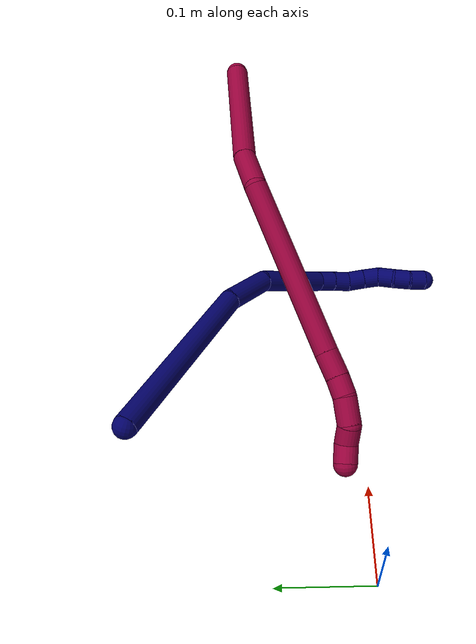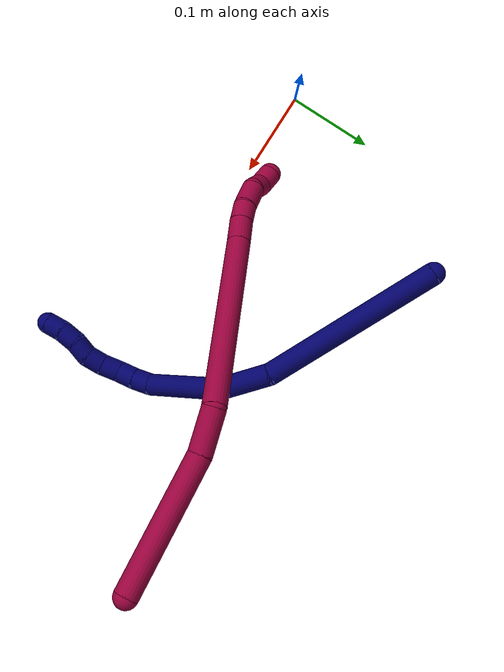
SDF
<sdf version="1.7">
 <world name="default">
  <model name="7">
   <static>0</static>
   <link name="7">
    <collision name="collision-cylinder-e_1_1_4">
     <pose>0.091069 0.011128 0.044133 -0.246994 1.10733 -0.153162</pose>
     <geometry><cylinder><radius>0.0125</radius><length>0.203619</length></cylinder></geometry>
     <surface>
      <friction><ode><mu>1.16</mu><mu2>1.16</mu2><slip1>0</slip1><slip2>0</slip2></ode></friction>
      <contact><ode><kp>1e+06</kp><kd>1</kd><max_vel>0</max_vel><min_depth>0.001</min_depth></ode></contact>
     </surface>
    </collision>
    <visual name="visual-cylinder-e_1_1_4">
     <pose>0.091069 0.011128 0.044133 -0.246994 1.10733 -0.153162</pose>
     <geometry><cylinder><radius>0.0125</radius><length>0.203619</length></cylinder></geometry>
     <material><ambient>0.003922 0 0.403922 1</ambient></material>
    </visual>
    <collision name="collision-cylinder-e_2_4_5">
     <pose>0.209743 0.017933 0.098124 0.41325 1.19899 0.284566</pose>
     <geometry><cylinder><radius>0.0125</radius><length>0.059258</length></cylinder></geometry>
     <surface>
      <friction><ode><mu>1.16</mu><mu2>1.16</mu2><slip1>0</slip1><slip2>0</slip2></ode></friction>
      <contact><ode><kp>1e+06</kp><kd>1</kd><max_vel>0</max_vel><min_depth>0.001</min_depth></ode></contact>
     </surface>
    </collision>
    <visual name="visual-cylinder-e_2_4_5">
     <pose>0.209743 0.017933 0.098124 0.41325 1.19899 0.284566</pose>
     <geometry><cylinder><radius>0.0125</radius><length>0.059258</length></cylinder></geometry>
     <material><ambient>0.003922 0 0.403922 1</ambient></material>
    </visual>
    <collision name="collision-cylinder-e_3_5_6">
     <pose>0.279541 -0.005408 0.109895 1.47058 1.14544 1.05599</pose>
     <geometry><cylinder><radius>0.0125</radius><length>0.092642</length></cylinder></geometry>
     <surface>
      <friction><ode><mu>1.16</mu><mu2>1.16</mu2><slip1>0</slip1><slip2>0</slip2></ode></friction>
      <contact><ode><kp>1e+06</kp><kd>1</kd><max_vel>0</max_vel><min_depth>0.001</min_depth></ode></contact>
     </surface>
    </collision>
    <visual name="visual-cylinder-e_3_5_6">
     <pose>0.279541 -0.005408 0.109895 1.47058 1.14544 1.05599</pose>
     <geometry><cylinder><radius>0.0125</radius><length>0.092642</length></cylinder></geometry>
     <material><ambient>0.003922 0 0.403922 1</ambient></material>
    </visual>
    <collision name="collision-cylinder-e_4_6_7">
     <pose>0.329139 -0.031533 0.113993 1.27238 0.783356 0.592207</pose>
     <geometry><cylinder><radius>0.0125</radius><length>0.020987</length></cylinder></geometry>
     <surface>
      <friction><ode><mu>1.16</mu><mu2>1.16</mu2><slip1>0</slip1><slip2>0</slip2></ode></friction>
      <contact><ode><kp>1e+06</kp><kd>1</kd><max_vel>0</max_vel><min_depth>0.001</min_depth></ode></contact>
     </surface>
    </collision>
    <visual name="visual-cylinder-e_4_6_7">
     <pose>0.329139 -0.031533 0.113993 1.27238 0.783356 0.592207</pose>
     <geometry><cylinder><radius>0.0125</radius><length>0.020987</length></cylinder></geometry>
     <material><ambient>0.003922 0 0.403922 1</ambient></material>
    </visual>
    <collision name="collision-cylinder-e_5_7_8">
     <pose>0.343227 -0.046277 0.118011 1.33539 0.704972 0.564607</pose>
     <geometry><cylinder><radius>0.0125</radius><length>0.020625</length></cylinder></geometry>
     <surface>
      <friction><ode><mu>1.16</mu><mu2>1.16</mu2><slip1>0</slip1><slip2>0</slip2></ode></friction>
      <contact><ode><kp>1e+06</kp><kd>1</kd><max_vel>0</max_vel><min_depth>0.001</min_depth></ode></contact>
     </surface>
    </collision>
    <visual name="visual-cylinder-e_5_7_8">
     <pose>0.343227 -0.046277 0.118011 1.33539 0.704972 0.564607</pose>
     <geometry><cylinder><radius>0.0125</radius><length>0.020625</length></cylinder></geometry>
     <material><ambient>0.003922 0 0.403922 1</ambient></material>
    </visual>
    <collision name="collision-cylinder-e_6_8_9">
     <pose>0.355727 -0.062056 0.124451 1.05571 0.556324 0.329966</pose>
     <geometry><cylinder><radius>0.0125</radius><length>0.022032</length></cylinder></geometry>
     <surface>
      <friction><ode><mu>1.16</mu><mu2>1.16</mu2><slip1>0</slip1><slip2>0</slip2></ode></friction>
      <contact><ode><kp>1e+06</kp><kd>1</kd><max_vel>0</max_vel><min_depth>0.001</min_depth></ode></contact>
     </surface>
    </collision>
    <visual name="visual-cylinder-e_6_8_9">
     <pose>0.355727 -0.062056 0.124451 1.05571 0.556324 0.329966</pose>
     <geometry><cylinder><radius>0.0125</radius><length>0.022032</length></cylinder></geometry>
     <material><ambient>0.003922 0 0.403922 1</ambient></material>
    </visual>
    <collision name="collision-cylinder-e_7_9_10">
     <pose>0.365203 -0.078527 0.13357 1.07457 0.36864 0.221229</pose>
     <geometry><cylinder><radius>0.0125</radius><length>0.02031</length></cylinder></geometry>
     <surface>
      <friction><ode><mu>1.16</mu><mu2>1.16</mu2><slip1>0</slip1><slip2>0</slip2></ode></friction>
      <contact><ode><kp>1e+06</kp><kd>1</kd><max_vel>0</max_vel><min_depth>0.001</min_depth></ode></contact>
     </surface>
    </collision>
    <visual name="visual-cylinder-e_7_9_10">
     <pose>0.365203 -0.078527 0.13357 1.07457 0.36864 0.221229</pose>
     <geometry><cylinder><radius>0.0125</radius><length>0.02031</length></cylinder></geometry>
     <material><ambient>0.003922 0 0.403922 1</ambient></material>
    </visual>
    <collision name="collision-cylinder-e_8_10_11">
     <pose>0.369722 -0.096658 0.140834 1.29684 0.084243 0.063848</pose>
     <geometry><cylinder><radius>0.0125</radius><length>0.020434</length></cylinder></geometry>
     <surface>
      <friction><ode><mu>1.16</mu><mu2>1.16</mu2><slip1>0</slip1><slip2>0</slip2></ode></friction>
      <contact><ode><kp>1e+06</kp><kd>1</kd><max_vel>0</max_vel><min_depth>0.001</min_depth></ode></contact>
     </surface>
    </collision>
    <visual name="visual-cylinder-e_8_10_11">
     <pose>0.369722 -0.096658 0.140834 1.29684 0.084243 0.063848</pose>
     <geometry><cylinder><radius>0.0125</radius><length>0.020434</length></cylinder></geometry>
     <material><ambient>0.003922 0 0.403922 1</ambient></material>
    </visual>
    <collision name="collision-cylinder-e_9_11_12">
     <pose>0.374083 -0.115522 0.145983 1.31249 0.357447 0.276466</pose>
     <geometry><cylinder><radius>0.0125</radius><length>0.020011</length></cylinder></geometry>
     <surface>
      <friction><ode><mu>1.16</mu><mu2>1.16</mu2><slip1>0</slip1><slip2>0</slip2></ode></friction>
      <contact><ode><kp>1e+06</kp><kd>1</kd><max_vel>0</max_vel><min_depth>0.001</min_depth></ode></contact>
     </surface>
    </collision>
    <visual name="visual-cylinder-e_9_11_12">
     <pose>0.374083 -0.115522 0.145983 1.31249 0.357447 0.276466</pose>
     <geometry><cylinder><radius>0.0125</radius><length>0.020011</length></cylinder></geometry>
     <material><ambient>0.003922 0 0.403922 1</ambient></material>
    </visual>
    <collision name="collision-cylinder-e_10_12_2">
     <pose>0.382991 -0.132683 0.150822 1.27758 0.568747 0.427523</pose>
     <geometry><cylinder><radius>0.0125</radius><length>0.020082</length></cylinder></geometry>
     <surface>
      <friction><ode><mu>1.16</mu><mu2>1.16</mu2><slip1>0</slip1><slip2>0</slip2></ode></friction>
      <contact><ode><kp>1e+06</kp><kd>1</kd><max_vel>0</max_vel><min_depth>0.001</min_depth></ode></contact>
     </surface>
    </collision>
    <visual name="visual-cylinder-e_10_12_2">
     <pose>0.382991 -0.132683 0.150822 1.27758 0.568747 0.427523</pose>
     <geometry><cylinder><radius>0.0125</radius><length>0.020082</length></cylinder></geometry>
     <material><ambient>0.003922 0 0.403922 1</ambient></material>
    </visual>
    <collision name="collision-sphere-2">
     <pose>0.388399 -0.140782 0.153268 0 -0 0</pose>
     <geometry><sphere><radius>0.0125</radius></sphere></geometry>
     <surface>
      <friction><ode><mu>1.16</mu><mu2>1.16</mu2><slip1>0</slip1><slip2>0</slip2></ode></friction>
      <contact><ode><kp>1e+06</kp><kd>1</kd><max_vel>0</max_vel><min_depth>0.001</min_depth></ode></contact>
     </surface>
    </collision>
    <visual name="visual-sphere-2">
     <pose>0.388399 -0.140782 0.153268 0 -0 0</pose>
     <geometry><sphere><radius>0.0125</radius></sphere></geometry>
     <material><ambient>0.003922 0 0.403922 1</ambient></material>
    </visual>
    <collision name="collision-sphere-12">
     <pose>0.377584 -0.124584 0.148377 0 -0 0</pose>
     <geometry><sphere><radius>0.0125</radius></sphere></geometry>
     <surface>
      <friction><ode><mu>1.16</mu><mu2>1.16</mu2><slip1>0</slip1><slip2>0</slip2></ode></friction>
      <contact><ode><kp>1e+06</kp><kd>1</kd><max_vel>0</max_vel><min_depth>0.001</min_depth></ode></contact>
     </surface>
    </collision>
    <visual name="visual-sphere-12">
     <pose>0.377584 -0.124584 0.148377 0 -0 0</pose>
     <geometry><sphere><radius>0.0125</radius></sphere></geometry>
     <material><ambient>0.003922 0 0.403922 1</ambient></material>
    </visual>
    <collision name="collision-sphere-11">
     <pose>0.370582 -0.106459 0.143589 0 -0 0</pose>
     <geometry><sphere><radius>0.0125</radius></sphere></geometry>
     <surface>
      <friction><ode><mu>1.16</mu><mu2>1.16</mu2><slip1>0</slip1><slip2>0</slip2></ode></friction>
      <contact><ode><kp>1e+06</kp><kd>1</kd><max_vel>0</max_vel><min_depth>0.001</min_depth></ode></contact>
     </surface>
    </collision>
    <visual name="visual-sphere-11">
     <pose>0.370582 -0.106459 0.143589 0 -0 0</pose>
     <geometry><sphere><radius>0.0125</radius></sphere></geometry>
     <material><ambient>0.003922 0 0.403922 1</ambient></material>
    </visual>
    <collision name="collision-sphere-10">
     <pose>0.368863 -0.086857 0.13808 0 -0 0</pose>
     <geometry><sphere><radius>0.0125</radius></sphere></geometry>
     <surface>
      <friction><ode><mu>1.16</mu><mu2>1.16</mu2><slip1>0</slip1><slip2>0</slip2></ode></friction>
      <contact><ode><kp>1e+06</kp><kd>1</kd><max_vel>0</max_vel><min_depth>0.001</min_depth></ode></contact>
     </surface>
    </collision>
    <visual name="visual-sphere-10">
     <pose>0.368863 -0.086857 0.13808 0 -0 0</pose>
     <geometry><sphere><radius>0.0125</radius></sphere></geometry>
     <material><ambient>0.003922 0 0.403922 1</ambient></material>
    </visual>
    <collision name="collision-sphere-9">
     <pose>0.361544 -0.070197 0.12906 0 -0 0</pose>
     <geometry><sphere><radius>0.0125</radius></sphere></geometry>
     <surface>
      <friction><ode><mu>1.16</mu><mu2>1.16</mu2><slip1>0</slip1><slip2>0</slip2></ode></friction>
      <contact><ode><kp>1e+06</kp><kd>1</kd><max_vel>0</max_vel><min_depth>0.001</min_depth></ode></contact>
     </surface>
    </collision>
    <visual name="visual-sphere-9">
     <pose>0.361544 -0.070197 0.12906 0 -0 0</pose>
     <geometry><sphere><radius>0.0125</radius></sphere></geometry>
     <material><ambient>0.003922 0 0.403922 1</ambient></material>
    </visual>
    <collision name="collision-sphere-4">
     <pose>0.182138 0.022256 0.088266 0 -0 0</pose>
     <geometry><sphere><radius>0.0125</radius></sphere></geometry>
     <surface>
      <friction><ode><mu>1.16</mu><mu2>1.16</mu2><slip1>0</slip1><slip2>0</slip2></ode></friction>
      <contact><ode><kp>1e+06</kp><kd>1</kd><max_vel>0</max_vel><min_depth>0.001</min_depth></ode></contact>
     </surface>
    </collision>
    <visual name="visual-sphere-4">
     <pose>0.182138 0.022256 0.088266 0 -0 0</pose>
     <geometry><sphere><radius>0.0125</radius></sphere></geometry>
     <material><ambient>0.003922 0 0.403922 1</ambient></material>
    </visual>
    <collision name="collision-sphere-1">
     <geometry><sphere><radius>0.0125</radius></sphere></geometry>
     <surface>
      <friction><ode><mu>1.16</mu><mu2>1.16</mu2><slip1>0</slip1><slip2>0</slip2></ode></friction>
      <contact><ode><kp>1e+06</kp><kd>1</kd><max_vel>0</max_vel><min_depth>0.001</min_depth></ode></contact>
     </surface>
    </collision>
    <visual name="visual-sphere-1">
     <geometry><sphere><radius>0.0125</radius></sphere></geometry>
     <material><ambient>0.003922 0 0.403922 1</ambient></material>
    </visual>
    <collision name="collision-sphere-8">
     <pose>0.349909 -0.053915 0.119843 0 -0 0</pose>
     <geometry><sphere><radius>0.0125</radius></sphere></geometry>
     <surface>
      <friction><ode><mu>1.16</mu><mu2>1.16</mu2><slip1>0</slip1><slip2>0</slip2></ode></friction>
      <contact><ode><kp>1e+06</kp><kd>1</kd><max_vel>0</max_vel><min_depth>0.001</min_depth></ode></contact>
     </surface>
    </collision>
    <visual name="visual-sphere-8">
     <pose>0.349909 -0.053915 0.119843 0 -0 0</pose>
     <geometry><sphere><radius>0.0125</radius></sphere></geometry>
     <material><ambient>0.003922 0 0.403922 1</ambient></material>
    </visual>
    <collision name="collision-sphere-5">
     <pose>0.237347 0.01361 0.107982 0 -0 0</pose>
     <geometry><sphere><radius>0.0125</radius></sphere></geometry>
     <surface>
      <friction><ode><mu>1.16</mu><mu2>1.16</mu2><slip1>0</slip1><slip2>0</slip2></ode></friction>
      <contact><ode><kp>1e+06</kp><kd>1</kd><max_vel>0</max_vel><min_depth>0.001</min_depth></ode></contact>
     </surface>
    </collision>
    <visual name="visual-sphere-5">
     <pose>0.237347 0.01361 0.107982 0 -0 0</pose>
     <geometry><sphere><radius>0.0125</radius></sphere></geometry>
     <material><ambient>0.003922 0 0.403922 1</ambient></material>
    </visual>
    <collision name="collision-sphere-6">
     <pose>0.321734 -0.024426 0.111807 0 -0 0</pose>
     <geometry><sphere><radius>0.0125</radius></sphere></geometry>
     <surface>
      <friction><ode><mu>1.16</mu><mu2>1.16</mu2><slip1>0</slip1><slip2>0</slip2></ode></friction>
      <contact><ode><kp>1e+06</kp><kd>1</kd><max_vel>0</max_vel><min_depth>0.001</min_depth></ode></contact>
     </surface>
    </collision>
    <visual name="visual-sphere-6">
     <pose>0.321734 -0.024426 0.111807 0 -0 0</pose>
     <geometry><sphere><radius>0.0125</radius></sphere></geometry>
     <material><ambient>0.003922 0 0.403922 1</ambient></material>
    </visual>
    <collision name="collision-sphere-7">
     <pose>0.336544 -0.03864 0.116179 0 -0 0</pose>
     <geometry><sphere><radius>0.0125</radius></sphere></geometry>
     <surface>
      <friction><ode><mu>1.16</mu><mu2>1.16</mu2><slip1>0</slip1><slip2>0</slip2></ode></friction>
      <contact><ode><kp>1e+06</kp><kd>1</kd><max_vel>0</max_vel><min_depth>0.001</min_depth></ode></contact>
     </surface>
    </collision>
    <visual name="visual-sphere-7">
     <pose>0.336544 -0.03864 0.116179 0 -0 0</pose>
     <geometry><sphere><radius>0.0125</radius></sphere></geometry>
     <material><ambient>0.003922 0 0.403922 1</ambient></material>
    </visual>
    <inertial>
     <pose>0.217686 -0.017404 0.088182 0 -0 0</pose>
     <mass>0.5</mass>
     <inertia>
      <ixx>0.000356</ixx>
      <ixy>0</ixy>
      <ixz>0</ixz>
      <iyy>0.000759</iyy>
      <iyz>0</iyz>
      <izz>-0.000749</izz>
     </inertia>
    </inertial>
   </link>
   <pose>0.109176 0.23288 0.119054 0.023403 0.619607 -0.539912</pose>
  </model>
  <model name="8">
   <static>0</static>
   <link name="8">
    <collision name="collision-cylinder-e_1_1_4">
     <pose>-0.043594 0.01608 -0.054995 -2.85713 -0.650402 2.33836</pose>
     <geometry><cylinder><radius>0.0125</radius><length>0.143993</length></cylinder></geometry>
     <surface>
      <friction><ode><mu>1.16</mu><mu2>1.16</mu2><slip1>0</slip1><slip2>0</slip2></ode></friction>
      <contact><ode><kp>1e+06</kp><kd>1</kd><max_vel>0</max_vel><min_depth>0.001</min_depth></ode></contact>
     </surface>
    </collision>
    <visual name="visual-cylinder-e_1_1_4">
     <pose>-0.043594 0.01608 -0.054995 -2.85713 -0.650402 2.33836</pose>
     <geometry><cylinder><radius>0.0125</radius><length>0.143993</length></cylinder></geometry>
     <material><ambient>0.584314 0 0.227451 1</ambient></material>
    </visual>
    <collision name="collision-cylinder-e_2_4_5">
     <pose>-0.103443 0.033397 -0.126688 -3.06766 -0.770592 2.95971</pose>
     <geometry><cylinder><radius>0.0125</radius><length>0.046671</length></cylinder></geometry>
     <surface>
      <friction><ode><mu>1.16</mu><mu2>1.16</mu2><slip1>0</slip1><slip2>0</slip2></ode></friction>
      <contact><ode><kp>1e+06</kp><kd>1</kd><max_vel>0</max_vel><min_depth>0.001</min_depth></ode></contact>
     </surface>
    </collision>
    <visual name="visual-cylinder-e_2_4_5">
     <pose>-0.103443 0.033397 -0.126688 -3.06766 -0.770592 2.95971</pose>
     <geometry><cylinder><radius>0.0125</radius><length>0.046671</length></cylinder></geometry>
     <material><ambient>0.584314 0 0.227451 1</ambient></material>
    </visual>
    <collision name="collision-cylinder-e_3_5_6">
     <pose>-0.157089 0.017781 -0.230506 2.95051 -0.398796 -2.25598</pose>
     <geometry><cylinder><radius>0.0125</radius><length>0.192583</length></cylinder></geometry>
     <surface>
      <friction><ode><mu>1.16</mu><mu2>1.16</mu2><slip1>0</slip1><slip2>0</slip2></ode></friction>
      <contact><ode><kp>1e+06</kp><kd>1</kd><max_vel>0</max_vel><min_depth>0.001</min_depth></ode></contact>
     </surface>
    </collision>
    <visual name="visual-cylinder-e_3_5_6">
     <pose>-0.157089 0.017781 -0.230506 2.95051 -0.398796 -2.25598</pose>
     <geometry><cylinder><radius>0.0125</radius><length>0.192583</length></cylinder></geometry>
     <material><ambient>0.584314 0 0.227451 1</ambient></material>
    </visual>
    <collision name="collision-cylinder-e_4_6_7">
     <pose>-0.20006 -0.001616 -0.329758 2.93487 -0.422963 -2.24144</pose>
     <geometry><cylinder><radius>0.0125</radius><length>0.027188</length></cylinder></geometry>
     <surface>
      <friction><ode><mu>1.16</mu><mu2>1.16</mu2><slip1>0</slip1><slip2>0</slip2></ode></friction>
      <contact><ode><kp>1e+06</kp><kd>1</kd><max_vel>0</max_vel><min_depth>0.001</min_depth></ode></contact>
     </surface>
    </collision>
    <visual name="visual-cylinder-e_4_6_7">
     <pose>-0.20006 -0.001616 -0.329758 2.93487 -0.422963 -2.24144</pose>
     <geometry><cylinder><radius>0.0125</radius><length>0.027188</length></cylinder></geometry>
     <material><ambient>0.584314 0 0.227451 1</ambient></material>
    </visual>
    <collision name="collision-cylinder-e_5_7_8">
     <pose>-0.210143 -0.00518 -0.351196 3.03241 -0.448391 -2.67116</pose>
     <geometry><cylinder><radius>0.0125</radius><length>0.020777</length></cylinder></geometry>
     <surface>
      <friction><ode><mu>1.16</mu><mu2>1.16</mu2><slip1>0</slip1><slip2>0</slip2></ode></friction>
      <contact><ode><kp>1e+06</kp><kd>1</kd><max_vel>0</max_vel><min_depth>0.001</min_depth></ode></contact>
     </surface>
    </collision>
    <visual name="visual-cylinder-e_5_7_8">
     <pose>-0.210143 -0.00518 -0.351196 3.03241 -0.448391 -2.67116</pose>
     <geometry><cylinder><radius>0.0125</radius><length>0.020777</length></cylinder></geometry>
     <material><ambient>0.584314 0 0.227451 1</ambient></material>
    </visual>
    <collision name="collision-cylinder-e_6_8_9">
     <pose>-0.218191 -0.005991 -0.374346 -3.12646 -0.250616 3.02162</pose>
     <geometry><cylinder><radius>0.0125</radius><length>0.028584</length></cylinder></geometry>
     <surface>
      <friction><ode><mu>1.16</mu><mu2>1.16</mu2><slip1>0</slip1><slip2>0</slip2></ode></friction>
      <contact><ode><kp>1e+06</kp><kd>1</kd><max_vel>0</max_vel><min_depth>0.001</min_depth></ode></contact>
     </surface>
    </collision>
    <visual name="visual-cylinder-e_6_8_9">
     <pose>-0.218191 -0.005991 -0.374346 -3.12646 -0.250616 3.02162</pose>
     <geometry><cylinder><radius>0.0125</radius><length>0.028584</length></cylinder></geometry>
     <material><ambient>0.584314 0 0.227451 1</ambient></material>
    </visual>
    <collision name="collision-cylinder-e_7_9_10">
     <pose>-0.219558 -0.004497 -0.397961 -3.01096 0.217493 -2.06203</pose>
     <geometry><cylinder><radius>0.0125</radius><length>0.020184</length></cylinder></geometry>
     <surface>
      <friction><ode><mu>1.16</mu><mu2>1.16</mu2><slip1>0</slip1><slip2>0</slip2></ode></friction>
      <contact><ode><kp>1e+06</kp><kd>1</kd><max_vel>0</max_vel><min_depth>0.001</min_depth></ode></contact>
     </surface>
    </collision>
    <visual name="visual-cylinder-e_7_9_10">
     <pose>-0.219558 -0.004497 -0.397961 -3.01096 0.217493 -2.06203</pose>
     <geometry><cylinder><radius>0.0125</radius><length>0.020184</length></cylinder></geometry>
     <material><ambient>0.584314 0 0.227451 1</ambient></material>
    </visual>
    <collision name="collision-cylinder-e_8_10_2">
     <pose>-0.220121 -0.000549 -0.416982 -2.86115 -0.277353 1.55956</pose>
     <geometry><cylinder><radius>0.0125</radius><length>0.020019</length></cylinder></geometry>
     <surface>
      <friction><ode><mu>1.16</mu><mu2>1.16</mu2><slip1>0</slip1><slip2>0</slip2></ode></friction>
      <contact><ode><kp>1e+06</kp><kd>1</kd><max_vel>0</max_vel><min_depth>0.001</min_depth></ode></contact>
     </surface>
    </collision>
    <visual name="visual-cylinder-e_8_10_2">
     <pose>-0.220121 -0.000549 -0.416982 -2.86115 -0.277353 1.55956</pose>
     <geometry><cylinder><radius>0.0125</radius><length>0.020019</length></cylinder></geometry>
     <material><ambient>0.584314 0 0.227451 1</ambient></material>
    </visual>
    <collision name="collision-sphere-2">
     <pose>-0.222862 0.002116 -0.426233 0 -0 0</pose>
     <geometry><sphere><radius>0.0125</radius></sphere></geometry>
     <surface>
      <friction><ode><mu>1.16</mu><mu2>1.16</mu2><slip1>0</slip1><slip2>0</slip2></ode></friction>
      <contact><ode><kp>1e+06</kp><kd>1</kd><max_vel>0</max_vel><min_depth>0.001</min_depth></ode></contact>
     </surface>
    </collision>
    <visual name="visual-sphere-2">
     <pose>-0.222862 0.002116 -0.426233 0 -0 0</pose>
     <geometry><sphere><radius>0.0125</radius></sphere></geometry>
     <material><ambient>0.584314 0 0.227451 1</ambient></material>
    </visual>
    <collision name="collision-sphere-10">
     <pose>-0.21738 -0.003214 -0.407731 0 -0 0</pose>
     <geometry><sphere><radius>0.0125</radius></sphere></geometry>
     <surface>
      <friction><ode><mu>1.16</mu><mu2>1.16</mu2><slip1>0</slip1><slip2>0</slip2></ode></friction>
      <contact><ode><kp>1e+06</kp><kd>1</kd><max_vel>0</max_vel><min_depth>0.001</min_depth></ode></contact>
     </surface>
    </collision>
    <visual name="visual-sphere-10">
     <pose>-0.21738 -0.003214 -0.407731 0 -0 0</pose>
     <geometry><sphere><radius>0.0125</radius></sphere></geometry>
     <material><ambient>0.584314 0 0.227451 1</ambient></material>
    </visual>
    <collision name="collision-sphere-9">
     <pose>-0.221736 -0.005781 -0.38819 0 -0 0</pose>
     <geometry><sphere><radius>0.0125</radius></sphere></geometry>
     <surface>
      <friction><ode><mu>1.16</mu><mu2>1.16</mu2><slip1>0</slip1><slip2>0</slip2></ode></friction>
      <contact><ode><kp>1e+06</kp><kd>1</kd><max_vel>0</max_vel><min_depth>0.001</min_depth></ode></contact>
     </surface>
    </collision>
    <visual name="visual-sphere-9">
     <pose>-0.221736 -0.005781 -0.38819 0 -0 0</pose>
     <geometry><sphere><radius>0.0125</radius></sphere></geometry>
     <material><ambient>0.584314 0 0.227451 1</ambient></material>
    </visual>
    <collision name="collision-sphere-4">
     <pose>-0.087189 0.03216 -0.10999 0 -0 0</pose>
     <geometry><sphere><radius>0.0125</radius></sphere></geometry>
     <surface>
      <friction><ode><mu>1.16</mu><mu2>1.16</mu2><slip1>0</slip1><slip2>0</slip2></ode></friction>
      <contact><ode><kp>1e+06</kp><kd>1</kd><max_vel>0</max_vel><min_depth>0.001</min_depth></ode></contact>
     </surface>
    </collision>
    <visual name="visual-sphere-4">
     <pose>-0.087189 0.03216 -0.10999 0 -0 0</pose>
     <geometry><sphere><radius>0.0125</radius></sphere></geometry>
     <material><ambient>0.584314 0 0.227451 1</ambient></material>
    </visual>
    <collision name="collision-sphere-1">
     <geometry><sphere><radius>0.0125</radius></sphere></geometry>
     <surface>
      <friction><ode><mu>1.16</mu><mu2>1.16</mu2><slip1>0</slip1><slip2>0</slip2></ode></friction>
      <contact><ode><kp>1e+06</kp><kd>1</kd><max_vel>0</max_vel><min_depth>0.001</min_depth></ode></contact>
     </surface>
    </collision>
    <visual name="visual-sphere-1">
     <geometry><sphere><radius>0.0125</radius></sphere></geometry>
     <material><ambient>0.584314 0 0.227451 1</ambient></material>
    </visual>
    <collision name="collision-sphere-8">
     <pose>-0.214647 -0.0062 -0.360502 0 -0 0</pose>
     <geometry><sphere><radius>0.0125</radius></sphere></geometry>
     <surface>
      <friction><ode><mu>1.16</mu><mu2>1.16</mu2><slip1>0</slip1><slip2>0</slip2></ode></friction>
      <contact><ode><kp>1e+06</kp><kd>1</kd><max_vel>0</max_vel><min_depth>0.001</min_depth></ode></contact>
     </surface>
    </collision>
    <visual name="visual-sphere-8">
     <pose>-0.214647 -0.0062 -0.360502 0 -0 0</pose>
     <geometry><sphere><radius>0.0125</radius></sphere></geometry>
     <material><ambient>0.584314 0 0.227451 1</ambient></material>
    </visual>
    <collision name="collision-sphere-5">
     <pose>-0.119698 0.034634 -0.143385 0 -0 0</pose>
     <geometry><sphere><radius>0.0125</radius></sphere></geometry>
     <surface>
      <friction><ode><mu>1.16</mu><mu2>1.16</mu2><slip1>0</slip1><slip2>0</slip2></ode></friction>
      <contact><ode><kp>1e+06</kp><kd>1</kd><max_vel>0</max_vel><min_depth>0.001</min_depth></ode></contact>
     </surface>
    </collision>
    <visual name="visual-sphere-5">
     <pose>-0.119698 0.034634 -0.143385 0 -0 0</pose>
     <geometry><sphere><radius>0.0125</radius></sphere></geometry>
     <material><ambient>0.584314 0 0.227451 1</ambient></material>
    </visual>
    <collision name="collision-sphere-6">
     <pose>-0.19448 0.000929 -0.317626 0 -0 0</pose>
     <geometry><sphere><radius>0.0125</radius></sphere></geometry>
     <surface>
      <friction><ode><mu>1.16</mu><mu2>1.16</mu2><slip1>0</slip1><slip2>0</slip2></ode></friction>
      <contact><ode><kp>1e+06</kp><kd>1</kd><max_vel>0</max_vel><min_depth>0.001</min_depth></ode></contact>
     </surface>
    </collision>
    <visual name="visual-sphere-6">
     <pose>-0.19448 0.000929 -0.317626 0 -0 0</pose>
     <geometry><sphere><radius>0.0125</radius></sphere></geometry>
     <material><ambient>0.584314 0 0.227451 1</ambient></material>
    </visual>
    <collision name="collision-sphere-7">
     <pose>-0.205639 -0.00416 -0.34189 0 -0 0</pose>
     <geometry><sphere><radius>0.0125</radius></sphere></geometry>
     <surface>
      <friction><ode><mu>1.16</mu><mu2>1.16</mu2><slip1>0</slip1><slip2>0</slip2></ode></friction>
      <contact><ode><kp>1e+06</kp><kd>1</kd><max_vel>0</max_vel><min_depth>0.001</min_depth></ode></contact>
     </surface>
    </collision>
    <visual name="visual-sphere-7">
     <pose>-0.205639 -0.00416 -0.34189 0 -0 0</pose>
     <geometry><sphere><radius>0.0125</radius></sphere></geometry>
     <material><ambient>0.584314 0 0.227451 1</ambient></material>
    </visual>
    <inertial>
     <pose>-0.132476 0.013748 -0.203132 0 -0 0</pose>
     <mass>0.5</mass>
     <inertia>
      <ixx>-0.000808</ixx>
      <ixy>0</ixy>
      <ixz>0</ixz>
      <iyy>0.000342</iyy>
      <iyz>0</iyz>
      <izz>0.000413</izz>
     </inertia>
    </inertial>
   </link>
   <pose>0.53234 0.139136 0.23165 0.305395 0.666996 0.551747</pose>
  </model>
 </world>
</sdf>
